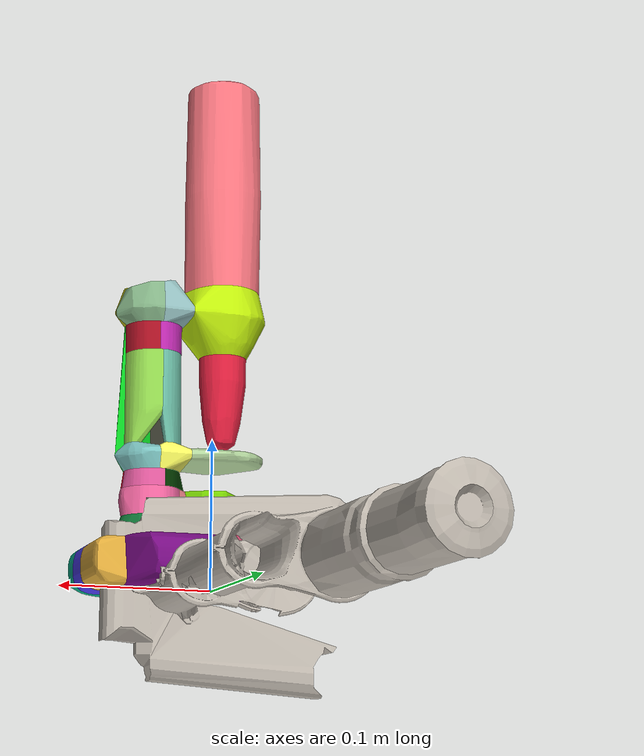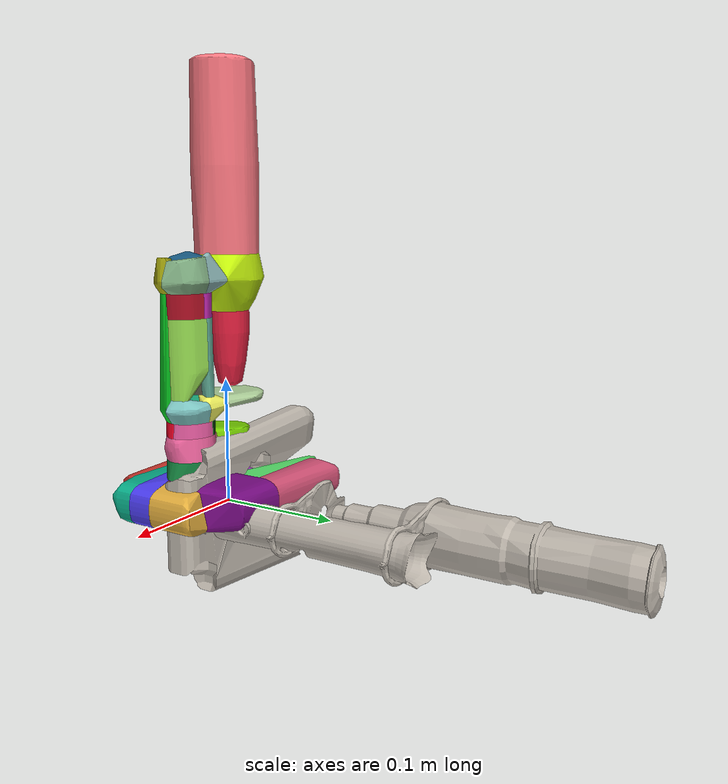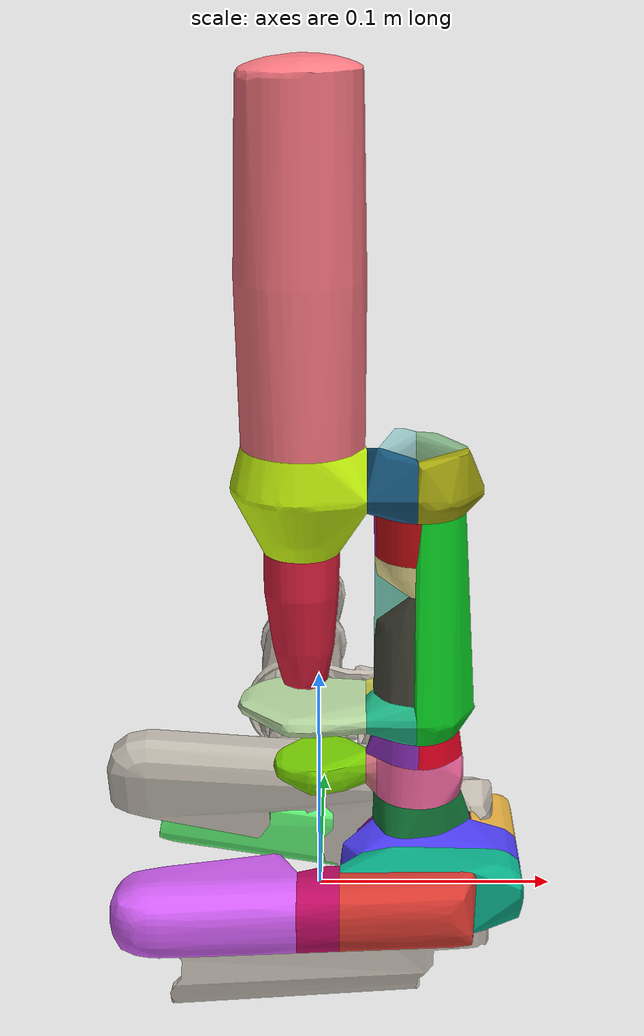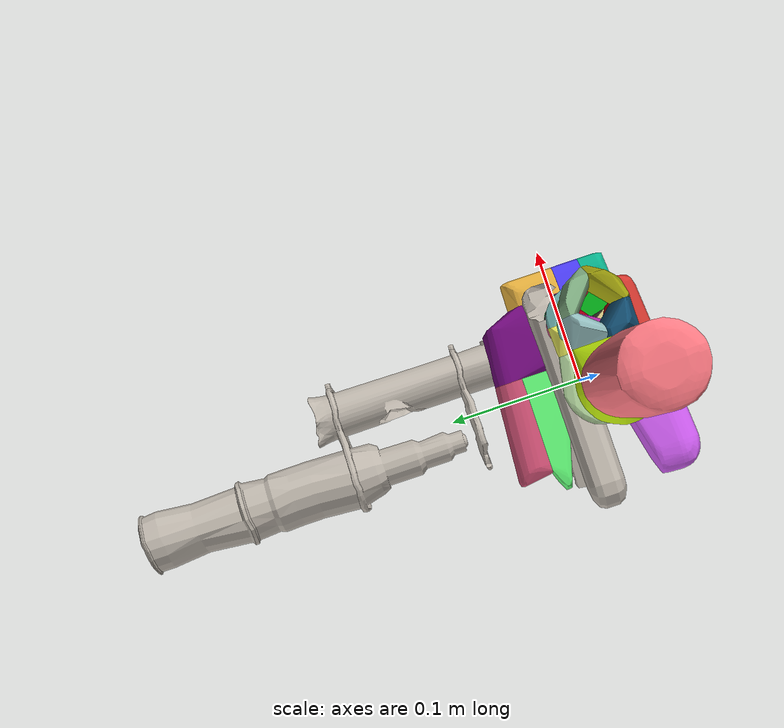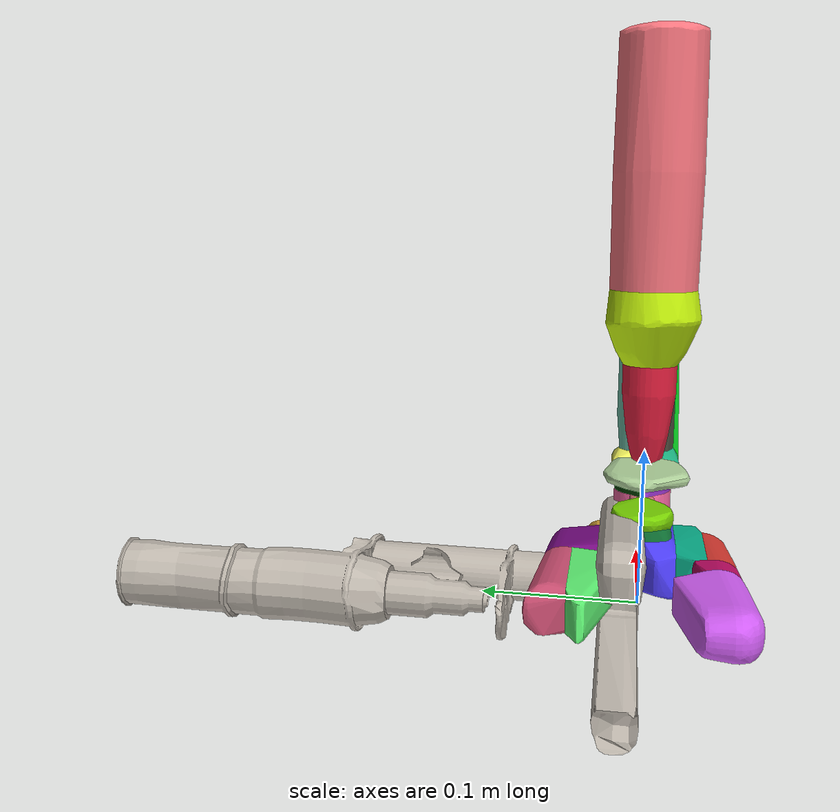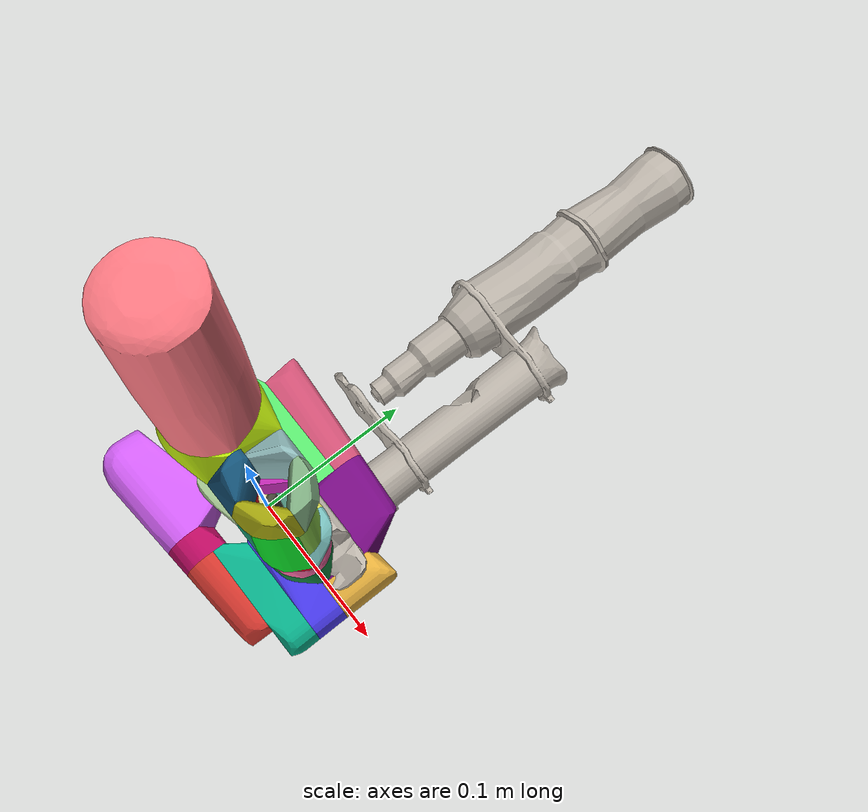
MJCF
<?xml version="1.0" ?>
<mujoco model="c7ab97fb91b14e7f9a539ef9a62d4fbb">
  <asset>
    <texture type="2d" name="material_0" file="material_0.png"/>
    <material name="material_0" texture="material_0" specular="0.4000000000000001" shininess="0.001"/>
    <mesh file="c7ab97fb91b14e7f9a539ef9a62d4fbb/c7ab97fb91b14e7f9a539ef9a62d4fbb.obj" scale="0.45478749599462154 0.45478749599462154 0.45478749599462154"/>
    <mesh file="c7ab97fb91b14e7f9a539ef9a62d4fbb/c7ab97fb91b14e7f9a539ef9a62d4fbb_collision_0.obj" scale="0.45478749599462154 0.45478749599462154 0.45478749599462154"/>
    <mesh file="c7ab97fb91b14e7f9a539ef9a62d4fbb/c7ab97fb91b14e7f9a539ef9a62d4fbb_collision_1.obj" scale="0.45478749599462154 0.45478749599462154 0.45478749599462154"/>
    <mesh file="c7ab97fb91b14e7f9a539ef9a62d4fbb/c7ab97fb91b14e7f9a539ef9a62d4fbb_collision_2.obj" scale="0.45478749599462154 0.45478749599462154 0.45478749599462154"/>
    <mesh file="c7ab97fb91b14e7f9a539ef9a62d4fbb/c7ab97fb91b14e7f9a539ef9a62d4fbb_collision_3.obj" scale="0.45478749599462154 0.45478749599462154 0.45478749599462154"/>
    <mesh file="c7ab97fb91b14e7f9a539ef9a62d4fbb/c7ab97fb91b14e7f9a539ef9a62d4fbb_collision_4.obj" scale="0.45478749599462154 0.45478749599462154 0.45478749599462154"/>
    <mesh file="c7ab97fb91b14e7f9a539ef9a62d4fbb/c7ab97fb91b14e7f9a539ef9a62d4fbb_collision_5.obj" scale="0.45478749599462154 0.45478749599462154 0.45478749599462154"/>
    <mesh file="c7ab97fb91b14e7f9a539ef9a62d4fbb/c7ab97fb91b14e7f9a539ef9a62d4fbb_collision_6.obj" scale="0.45478749599462154 0.45478749599462154 0.45478749599462154"/>
    <mesh file="c7ab97fb91b14e7f9a539ef9a62d4fbb/c7ab97fb91b14e7f9a539ef9a62d4fbb_collision_7.obj" scale="0.45478749599462154 0.45478749599462154 0.45478749599462154"/>
    <mesh file="c7ab97fb91b14e7f9a539ef9a62d4fbb/c7ab97fb91b14e7f9a539ef9a62d4fbb_collision_8.obj" scale="0.45478749599462154 0.45478749599462154 0.45478749599462154"/>
    <mesh file="c7ab97fb91b14e7f9a539ef9a62d4fbb/c7ab97fb91b14e7f9a539ef9a62d4fbb_collision_9.obj" scale="0.45478749599462154 0.45478749599462154 0.45478749599462154"/>
    <mesh file="c7ab97fb91b14e7f9a539ef9a62d4fbb/c7ab97fb91b14e7f9a539ef9a62d4fbb_collision_10.obj" scale="0.45478749599462154 0.45478749599462154 0.45478749599462154"/>
    <mesh file="c7ab97fb91b14e7f9a539ef9a62d4fbb/c7ab97fb91b14e7f9a539ef9a62d4fbb_collision_11.obj" scale="0.45478749599462154 0.45478749599462154 0.45478749599462154"/>
    <mesh file="c7ab97fb91b14e7f9a539ef9a62d4fbb/c7ab97fb91b14e7f9a539ef9a62d4fbb_collision_12.obj" scale="0.45478749599462154 0.45478749599462154 0.45478749599462154"/>
    <mesh file="c7ab97fb91b14e7f9a539ef9a62d4fbb/c7ab97fb91b14e7f9a539ef9a62d4fbb_collision_13.obj" scale="0.45478749599462154 0.45478749599462154 0.45478749599462154"/>
    <mesh file="c7ab97fb91b14e7f9a539ef9a62d4fbb/c7ab97fb91b14e7f9a539ef9a62d4fbb_collision_14.obj" scale="0.45478749599462154 0.45478749599462154 0.45478749599462154"/>
    <mesh file="c7ab97fb91b14e7f9a539ef9a62d4fbb/c7ab97fb91b14e7f9a539ef9a62d4fbb_collision_15.obj" scale="0.45478749599462154 0.45478749599462154 0.45478749599462154"/>
    <mesh file="c7ab97fb91b14e7f9a539ef9a62d4fbb/c7ab97fb91b14e7f9a539ef9a62d4fbb_collision_16.obj" scale="0.45478749599462154 0.45478749599462154 0.45478749599462154"/>
    <mesh file="c7ab97fb91b14e7f9a539ef9a62d4fbb/c7ab97fb91b14e7f9a539ef9a62d4fbb_collision_17.obj" scale="0.45478749599462154 0.45478749599462154 0.45478749599462154"/>
    <mesh file="c7ab97fb91b14e7f9a539ef9a62d4fbb/c7ab97fb91b14e7f9a539ef9a62d4fbb_collision_18.obj" scale="0.45478749599462154 0.45478749599462154 0.45478749599462154"/>
    <mesh file="c7ab97fb91b14e7f9a539ef9a62d4fbb/c7ab97fb91b14e7f9a539ef9a62d4fbb_collision_19.obj" scale="0.45478749599462154 0.45478749599462154 0.45478749599462154"/>
    <mesh file="c7ab97fb91b14e7f9a539ef9a62d4fbb/c7ab97fb91b14e7f9a539ef9a62d4fbb_collision_20.obj" scale="0.45478749599462154 0.45478749599462154 0.45478749599462154"/>
    <mesh file="c7ab97fb91b14e7f9a539ef9a62d4fbb/c7ab97fb91b14e7f9a539ef9a62d4fbb_collision_21.obj" scale="0.45478749599462154 0.45478749599462154 0.45478749599462154"/>
    <mesh file="c7ab97fb91b14e7f9a539ef9a62d4fbb/c7ab97fb91b14e7f9a539ef9a62d4fbb_collision_22.obj" scale="0.45478749599462154 0.45478749599462154 0.45478749599462154"/>
    <mesh file="c7ab97fb91b14e7f9a539ef9a62d4fbb/c7ab97fb91b14e7f9a539ef9a62d4fbb_collision_23.obj" scale="0.45478749599462154 0.45478749599462154 0.45478749599462154"/>
    <mesh file="c7ab97fb91b14e7f9a539ef9a62d4fbb/c7ab97fb91b14e7f9a539ef9a62d4fbb_collision_24.obj" scale="0.45478749599462154 0.45478749599462154 0.45478749599462154"/>
    <mesh file="c7ab97fb91b14e7f9a539ef9a62d4fbb/c7ab97fb91b14e7f9a539ef9a62d4fbb_collision_25.obj" scale="0.45478749599462154 0.45478749599462154 0.45478749599462154"/>
    <mesh file="c7ab97fb91b14e7f9a539ef9a62d4fbb/c7ab97fb91b14e7f9a539ef9a62d4fbb_collision_26.obj" scale="0.45478749599462154 0.45478749599462154 0.45478749599462154"/>
    <mesh file="c7ab97fb91b14e7f9a539ef9a62d4fbb/c7ab97fb91b14e7f9a539ef9a62d4fbb_collision_27.obj" scale="0.45478749599462154 0.45478749599462154 0.45478749599462154"/>
    <mesh file="c7ab97fb91b14e7f9a539ef9a62d4fbb/c7ab97fb91b14e7f9a539ef9a62d4fbb_collision_28.obj" scale="0.45478749599462154 0.45478749599462154 0.45478749599462154"/>
    <mesh file="c7ab97fb91b14e7f9a539ef9a62d4fbb/c7ab97fb91b14e7f9a539ef9a62d4fbb_collision_29.obj" scale="0.45478749599462154 0.45478749599462154 0.45478749599462154"/>
    <mesh file="c7ab97fb91b14e7f9a539ef9a62d4fbb/c7ab97fb91b14e7f9a539ef9a62d4fbb_collision_30.obj" scale="0.45478749599462154 0.45478749599462154 0.45478749599462154"/>
    <mesh file="c7ab97fb91b14e7f9a539ef9a62d4fbb/c7ab97fb91b14e7f9a539ef9a62d4fbb_collision_31.obj" scale="0.45478749599462154 0.45478749599462154 0.45478749599462154"/>
    <mesh file="c7ab97fb91b14e7f9a539ef9a62d4fbb/c7ab97fb91b14e7f9a539ef9a62d4fbb_collision_32.obj" scale="0.45478749599462154 0.45478749599462154 0.45478749599462154"/>
    <mesh file="c7ab97fb91b14e7f9a539ef9a62d4fbb/c7ab97fb91b14e7f9a539ef9a62d4fbb_collision_33.obj" scale="0.45478749599462154 0.45478749599462154 0.45478749599462154"/>
    <mesh file="c7ab97fb91b14e7f9a539ef9a62d4fbb/c7ab97fb91b14e7f9a539ef9a62d4fbb_collision_34.obj" scale="0.45478749599462154 0.45478749599462154 0.45478749599462154"/>
    <mesh file="c7ab97fb91b14e7f9a539ef9a62d4fbb/c7ab97fb91b14e7f9a539ef9a62d4fbb_collision_35.obj" scale="0.45478749599462154 0.45478749599462154 0.45478749599462154"/>
  </asset>
  <worldbody>
    <body name="c7ab97fb91b14e7f9a539ef9a62d4fbb">
      <inertial pos="0 0 0.1750" mass="0.02" diaginertia="0.000234 0.000251 0.000076"/>
      <geom material="material_0" mesh="c7ab97fb91b14e7f9a539ef9a62d4fbb" class="visual"/>
      <geom mesh="c7ab97fb91b14e7f9a539ef9a62d4fbb_collision_0" rgba="0.4755658828071456 0.8255042776362183 0.007558880461649875 1" class="collision"/>
      <geom mesh="c7ab97fb91b14e7f9a539ef9a62d4fbb_collision_1" rgba="0.9050363668983594 0.6927617364894252 0.24406719288132395 1" class="collision"/>
      <geom mesh="c7ab97fb91b14e7f9a539ef9a62d4fbb_collision_2" rgba="0.7052560670763546 0.8413303494254051 0.6209870235965168 1" class="collision"/>
      <geom mesh="c7ab97fb91b14e7f9a539ef9a62d4fbb_collision_3" rgba="0.7471535051239505 0.0379476253629939 0.3885120300419481 1" class="collision"/>
      <geom mesh="c7ab97fb91b14e7f9a539ef9a62d4fbb_collision_4" rgba="0.8310347826889035 0.37508699563127545 0.968471196236038 1" class="collision"/>
      <geom mesh="c7ab97fb91b14e7f9a539ef9a62d4fbb_collision_5" rgba="0.4700245007494933 0.042574836371054525 0.5169331414388519 1" class="collision"/>
      <geom mesh="c7ab97fb91b14e7f9a539ef9a62d4fbb_collision_6" rgba="0.8214825241642203 0.3183570518531401 0.4611586733570975 1" class="collision"/>
      <geom mesh="c7ab97fb91b14e7f9a539ef9a62d4fbb_collision_7" rgba="0.37156037463887404 0.9523227840695693 0.4535625672528919 1" class="collision"/>
      <geom mesh="c7ab97fb91b14e7f9a539ef9a62d4fbb_collision_8" rgba="0.2993661497112998 0.23963564385074287 0.9648999677717749 1" class="collision"/>
      <geom mesh="c7ab97fb91b14e7f9a539ef9a62d4fbb_collision_9" rgba="0.9964750938597904 0.47584697941524934 0.5126791932487021 1" class="collision"/>
      <geom mesh="c7ab97fb91b14e7f9a539ef9a62d4fbb_collision_10" rgba="0.8459910908154858 0.22566970454636248 0.1907658166398054 1" class="collision"/>
      <geom mesh="c7ab97fb91b14e7f9a539ef9a62d4fbb_collision_11" rgba="0.8915990370712917 0.1256856770183168 0.24777424052192987 1" class="collision"/>
      <geom mesh="c7ab97fb91b14e7f9a539ef9a62d4fbb_collision_12" rgba="0.7768265425505582 0.9576975764253379 0.04886076865024791 1" class="collision"/>
      <geom mesh="c7ab97fb91b14e7f9a539ef9a62d4fbb_collision_13" rgba="0.034920653324416184 0.7039079749720956 0.5565515167647276 1" class="collision"/>
      <geom mesh="c7ab97fb91b14e7f9a539ef9a62d4fbb_collision_14" rgba="0.6904272816535799 0.06655028150219466 0.14296560066218178 1" class="collision"/>
      <geom mesh="c7ab97fb91b14e7f9a539ef9a62d4fbb_collision_15" rgba="0.5258714213186195 0.7142028860753119 0.5348017993996419 1" class="collision"/>
      <geom mesh="c7ab97fb91b14e7f9a539ef9a62d4fbb_collision_16" rgba="0.04145959858268122 0.8537539362788514 0.14601476717872997 1" class="collision"/>
      <geom mesh="c7ab97fb91b14e7f9a539ef9a62d4fbb_collision_17" rgba="0.588185611580741 0.8612781211460433 0.3175713447024331 1" class="collision"/>
      <geom mesh="c7ab97fb91b14e7f9a539ef9a62d4fbb_collision_18" rgba="0.08219661483203267 0.3318707756115066 0.4801390857959621 1" class="collision"/>
      <geom mesh="c7ab97fb91b14e7f9a539ef9a62d4fbb_collision_19" rgba="0.5817756897711065 0.7527180864380487 0.7541611781534907 1" class="collision"/>
      <geom mesh="c7ab97fb91b14e7f9a539ef9a62d4fbb_collision_20" rgba="0.642852007923415 0.6453406542664358 0.05594601616553874 1" class="collision"/>
      <geom mesh="c7ab97fb91b14e7f9a539ef9a62d4fbb_collision_21" rgba="0.957383149383607 0.403642690515157 0.6351920734441302 1" class="collision"/>
      <geom mesh="c7ab97fb91b14e7f9a539ef9a62d4fbb_collision_22" rgba="0.7854961022464466 0.05049255997318991 0.07526705873296413 1" class="collision"/>
      <geom mesh="c7ab97fb91b14e7f9a539ef9a62d4fbb_collision_23" rgba="0.4293951616927719 0.7559185162959381 0.6630608379309112 1" class="collision"/>
      <geom mesh="c7ab97fb91b14e7f9a539ef9a62d4fbb_collision_24" rgba="0.7658621483574694 0.1642197905544549 0.7061428113842455 1" class="collision"/>
      <geom mesh="c7ab97fb91b14e7f9a539ef9a62d4fbb_collision_25" rgba="0.8971957249871129 0.8400691800237394 0.5537761408634918 1" class="collision"/>
      <geom mesh="c7ab97fb91b14e7f9a539ef9a62d4fbb_collision_26" rgba="0.28766362958770253 0.29271602540647823 0.23670612480687647 1" class="collision"/>
      <geom mesh="c7ab97fb91b14e7f9a539ef9a62d4fbb_collision_27" rgba="0.11366972905597728 0.7072270896761104 0.5169802693164589 1" class="collision"/>
      <geom mesh="c7ab97fb91b14e7f9a539ef9a62d4fbb_collision_28" rgba="0.9867699799714156 0.9915154895189905 0.38741267056426476 1" class="collision"/>
      <geom mesh="c7ab97fb91b14e7f9a539ef9a62d4fbb_collision_29" rgba="0.4872425737196401 0.7683014529256298 0.7566537397670268 1" class="collision"/>
      <geom mesh="c7ab97fb91b14e7f9a539ef9a62d4fbb_collision_30" rgba="0.967959730816025 0.00892278476465036 0.14646710374178118 1" class="collision"/>
      <geom mesh="c7ab97fb91b14e7f9a539ef9a62d4fbb_collision_31" rgba="0.06849426102967004 0.49267985057498176 0.23077709206761388 1" class="collision"/>
      <geom mesh="c7ab97fb91b14e7f9a539ef9a62d4fbb_collision_32" rgba="0.8187598174187952 0.44477226806067294 0.4731412472829294 1" class="collision"/>
      <geom mesh="c7ab97fb91b14e7f9a539ef9a62d4fbb_collision_33" rgba="0.013819999604023359 0.23602566278245662 0.00461305708353088 1" class="collision"/>
      <geom mesh="c7ab97fb91b14e7f9a539ef9a62d4fbb_collision_34" rgba="0.8959284571802996 0.35594936452632875 0.6260962839659155 1" class="collision"/>
      <geom mesh="c7ab97fb91b14e7f9a539ef9a62d4fbb_collision_35" rgba="0.5817864555984611 0.19871753684691107 0.782826675674955 1" class="collision"/>
      <site class="grasppoint" pos="0 0 0.2800"/>
      <site class="grasppoint" pos="0 0 0.3062"/>
      <site class="grasppoint" pos="0 0 0.3325"/>
    </body>
  </worldbody>
  <compiler boundmass="0.015" boundinertia="1e-05" angle="radian"/>
  <default>
    <default class="visual">
      <geom group="2" type="mesh" contype="0" conaffinity="0" density="50"/>
    </default>
    <default class="collision">
      <geom type="mesh" density="50" friction="1.5 0.1 0.1" solimp="0.9 0.95 0.001" solref="0.02 1"/>
    </default>
    <default class="grasppoint">
      <site type="sphere" size="0.005" group="4" rgba="0 0 1 1"/>
    </default>
  </default>
</mujoco>
